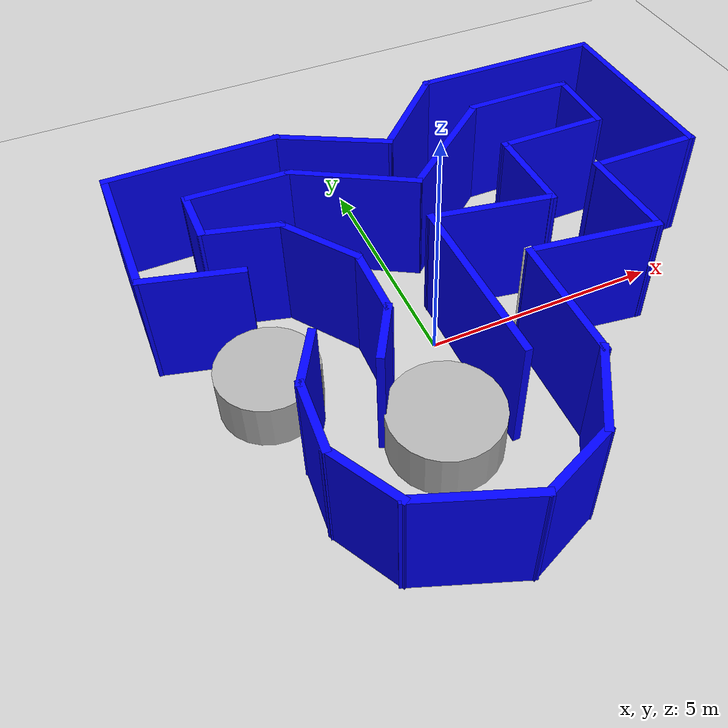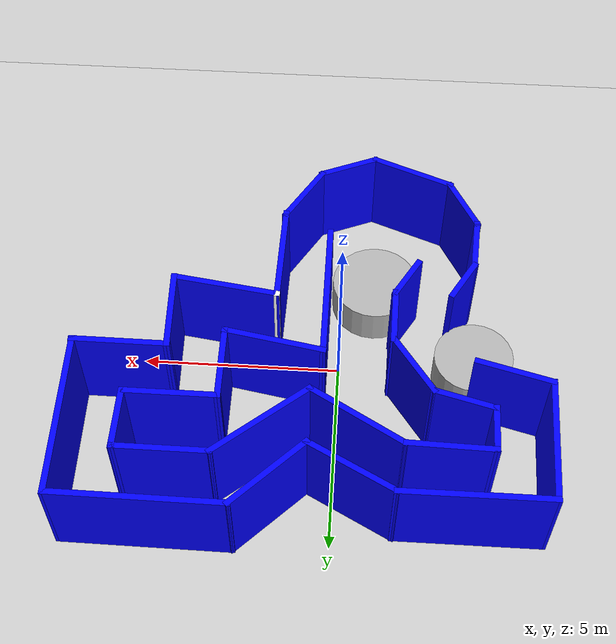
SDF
<?xml version="1.0" ?>
<sdf version="1.8">
  <world name='test_map_2'>
    <physics name='1ms' type='ode'>
      <max_step_size>0.003</max_step_size>
      <real_time_factor>1</real_time_factor>
      <real_time_update_rate>1000</real_time_update_rate>
    </physics>

    <plugin filename="libignition-gazebo-physics-system.so" name="ignition::gazebo::systems::Physics" />
    <plugin filename="libignition-gazebo-user-commands-system.so" name="ignition::gazebo::systems::UserCommands" />
    <plugin filename="libignition-gazebo-scene-broadcaster-system.so" name="ignition::gazebo::systems::SceneBroadcaster" />
    <plugin filename="libignition-gazebo-sensors-system.so" name="ignition::gazebo::systems::Sensors">
      <render_engine>ogre</render_engine>
    </plugin>

    <light type="directional" name="sun">
      <cast_shadows>true</cast_shadows>
      <pose>0 0 10 0 0 0</pose>
      <diffuse>0.8 0.8 0.8 1</diffuse>
      <specular>0.2 0.2 0.2 1</specular>
      <direction>-0.5 0.1 -0.9</direction>
    </light>

    <model name="ground_plane">
      <static>true</static>
      <link name="link">
        <collision name="collision">
          <geometry><plane><normal>0 0 1</normal><size>100 100</size></plane></geometry>
        </collision>
        <visual name="visual">
          <geometry><plane><normal>0 0 1</normal><size>100 100</size></plane></geometry>
          <material>
            <ambient>0.8 0.8 0.8 1</ambient>
            <diffuse>0.8 0.8 0.8 1</diffuse>
          </material>
        </visual>
      </link>
    </model>

    <model name='mappa_2'>
      <static>true</static>
      <pose>0.654951 0.036824 0 0 -0 0</pose>

      <model name='first_cylinder'>
        <pose>-4.05 -0.02 0.5 0 0 0</pose>
        <link name='link'>
          <collision name='collision'>
            <geometry><cylinder><radius>1.0</radius><length>1.0</length></cylinder></geometry>
          </collision>
          <visual name='visual'>
            <geometry><cylinder><radius>1.0</radius><length>1.0</length></cylinder></geometry>
            <material><ambient>0.5 0.5 0.5 1</ambient><diffuse>0.7 0.7 0.7 1</diffuse></material>
          </visual>
        </link>
      </model>

      <model name='second_cylinder'>
        <pose>-1.5 -2.22 0.5 0 0 0</pose>
        <link name='link'>
          <collision name='collision'>
            <geometry><cylinder><radius>1.1</radius><length>1.0</length></cylinder></geometry>
          </collision>
          <visual name='visual'>
            <geometry><cylinder><radius>1.1</radius><length>1.0</length></cylinder></geometry>
            <material><ambient>0.5 0.5 0.5 1</ambient><diffuse>0.7 0.7 0.7 1</diffuse></material>
          </visual>
        </link>
      </model>

      <link name='Wall_0'>
        <pose>-3.65705 -1.3213 0 0 -0 -2.0944</pose>
        <collision name='Wall_0_Collision'>
          <pose>0 0 1.25 0 -0 0</pose>
          <geometry><box><size>1.25 0.15 2.5</size></box></geometry>
        </collision>
        <visual name='Wall_0_Visual'>
          <pose>0 0 1.25 0 -0 0</pose>
          <geometry><box><size>1.25 0.15 2.5</size></box></geometry>
          <material><ambient>0 0 1 1</ambient><diffuse>0 0 1 1</diffuse></material>
        </visual>
      </link>

      <link name='Wall_1'>
        <pose>-3.97128 -2.45953 0 0 -0 -1.62999</pose>
        <collision name='Wall_1_Collision'>
          <pose>0 0 1.25 0 -0 0</pose>
          <geometry><box><size>1.47617 0.15 2.5</size></box></geometry>
        </collision>
        <visual name='Wall_1_Visual'>
          <pose>0 0 1.25 0 -0 0</pose>
          <geometry><box><size>1.47617 0.15 2.5</size></box></geometry>
          <material><ambient>0 0 1 1</ambient><diffuse>0 0 1 1</diffuse></material>
        </visual>
      </link>

      <link name='Wall_10'>
        <pose>-4.8606 1.29248 0 0 -0 2.87979</pose>
        <collision name='Wall_10_Collision'>
          <pose>0 0 1.25 0 -0 0</pose>
          <geometry><box><size>2 0.15 2.5</size></box></geometry>
        </collision>
        <visual name='Wall_10_Visual'>
          <pose>0 0 1.25 0 -0 0</pose>
          <geometry><box><size>2 0.15 2.5</size></box></geometry>
          <material><ambient>0 0 1 1</ambient><diffuse>0 0 1 1</diffuse></material>
        </visual>
      </link>

      <link name='Wall_12'>
        <pose>-5.74101 3.06881 0 0 -0 1.55662</pose>
        <collision name='Wall_12_Collision'>
          <pose>0 0 1.25 0 -0 0</pose>
          <geometry><box><size>3.22416 0.15 2.5</size></box></geometry>
        </collision>
        <visual name='Wall_12_Visual'>
          <pose>0 0 1.25 0 -0 0</pose>
          <geometry><box><size>3.22416 0.15 2.5</size></box></geometry>
          <material><ambient>0 0 1 1</ambient><diffuse>0 0 1 1</diffuse></material>
        </visual>
      </link>

      <link name='Wall_13'>
        <pose>-3.92788 4.60574 0 0 -0 0</pose>
        <collision name='Wall_13_Collision'>
          <pose>0 0 1.25 0 -0 0</pose>
          <geometry><box><size>3.73266 0.15 2.5</size></box></geometry>
        </collision>
        <visual name='Wall_13_Visual'>
          <pose>0 0 1.25 0 -0 0</pose>
          <geometry><box><size>3.73266 0.15 2.5</size></box></geometry>
          <material><ambient>0 0 1 1</ambient><diffuse>0 0 1 1</diffuse></material>
        </visual>
      </link>

      <link name='Wall_18'>
        <pose>5.75719 3.04244 0 0 -0 -1.5708</pose>
        <collision name='Wall_18_Collision'>
          <pose>0 0 1.25 0 -0 0</pose>
          <geometry><box><size>4.25 0.15 2.5</size></box></geometry>
        </collision>
        <visual name='Wall_18_Visual'>
          <pose>0 0 1.25 0 -0 0</pose>
          <geometry><box><size>4.25 0.15 2.5</size></box></geometry>
          <material><ambient>0 0 1 1</ambient><diffuse>0 0 1 1</diffuse></material>
        </visual>
      </link>

      <link name='Wall_19'>
        <pose>4.61512 1.00004 0 0 -0 3.13502</pose>
        <collision name='Wall_19_Collision'>
          <pose>0 0 1.25 0 -0 0</pose>
          <geometry><box><size>2.46071 0.15 2.5</size></box></geometry>
        </collision>
        <visual name='Wall_19_Visual'>
          <pose>0 0 1.25 0 -0 0</pose>
          <geometry><box><size>2.46071 0.15 2.5</size></box></geometry>
          <material><ambient>0 0 1 1</ambient><diffuse>0 0 1 1</diffuse></material>
        </visual>
      </link>

      <link name='Wall_22'>
        <pose>0.452836 -3.85548 0 0 -0 1.02847</pose>
        <collision name='Wall_22_Collision'>
          <pose>0 0 1.25 0 -0 0</pose>
          <geometry><box><size>1.79371 0.15 2.5</size></box></geometry>
        </collision>
        <visual name='Wall_22_Visual'>
          <pose>0 0 1.25 0 -0 0</pose>
          <geometry><box><size>1.79371 0.15 2.5</size></box></geometry>
          <material><ambient>0 0 1 1</ambient><diffuse>0 0 1 1</diffuse></material>
        </visual>
      </link>

      <link name='Wall_25'>
        <pose>0.935722 -0.621074 0 0 -0 0</pose>
        <collision name='Wall_25_Collision'>
          <pose>0 0 1.25 0 -0 0</pose>
          <geometry><box><size>0.15 0.15 2.5</size></box></geometry>
        </collision>
        <visual name='Wall_25_Visual'>
          <pose>0 0 1.25 0 -0 0</pose>
          <geometry><box><size>0.15 0.15 2.5</size></box></geometry>
          <material><ambient>1 1 1 1</ambient><diffuse>1 1 1 1</diffuse></material>
        </visual>
      </link>

      <link name='Wall_30'>
        <pose>0.906371 -1.91274 0 0 -0 -1.59399</pose>
        <collision name='Wall_30_Collision'>
          <pose>0 0 1.25 0 -0 0</pose>
          <geometry><box><size>2.68116 0.15 2.5</size></box></geometry>
        </collision>
        <visual name='Wall_30_Visual'>
          <pose>0 0 1.25 0 -0 0</pose>
          <geometry><box><size>2.68116 0.15 2.5</size></box></geometry>
          <material><ambient>0 0 1 1</ambient><diffuse>0 0 1 1</diffuse></material>
        </visual>
      </link>

      <link name='Wall_32'>
        <pose>2.22362 -0.810262 0 0 -0 2.99574</pose>
        <collision name='Wall_32_Collision'>
          <pose>0 0 1.25 0 -0 0</pose>
          <geometry><box><size>2.75343 0.15 2.5</size></box></geometry>
        </collision>
        <visual name='Wall_32_Visual'>
          <pose>0 0 1.25 0 -0 0</pose>
          <geometry><box><size>2.75343 0.15 2.5</size></box></geometry>
          <material><ambient>0 0 1 1</ambient><diffuse>0 0 1 1</diffuse></material>
        </visual>
      </link>

      <link name='Wall_34'>
        <pose>3.49437 0.00409 0 0 -0 1.59656</pose>
        <collision name='Wall_34_Collision'>
          <pose>0 0 1.25 0 -0 0</pose>
          <geometry><box><size>2.15775 0.15 2.5</size></box></geometry>
        </collision>
        <visual name='Wall_34_Visual'>
          <pose>0 0 1.25 0 -0 0</pose>
          <geometry><box><size>2.15775 0.15 2.5</size></box></geometry>
          <material><ambient>0 0 1 1</ambient><diffuse>0 0 1 1</diffuse></material>
        </visual>
      </link>

      <link name='Wall_38'>
        <pose>-2.26066 -1.31701 0 0 -0 1.0472</pose>
        <collision name='Wall_38_Collision'>
          <pose>0 0 1.25 0 -0 0</pose>
          <geometry><box><size>1.25 0.15 2.5</size></box></geometry>
        </collision>
        <visual name='Wall_38_Visual'>
          <pose>0 0 1.25 0 -0 0</pose>
          <geometry><box><size>1.25 0.15 2.5</size></box></geometry>
          <material><ambient>0 0 1 1</ambient><diffuse>0 0 1 1</diffuse></material>
        </visual>
      </link>

      <link name='Wall_39'>
        <pose>-1.97687 -0.143728 0 0 -0 1.55819</pose>
        <collision name='Wall_39_Collision'>
          <pose>0 0 1.25 0 -0 0</pose>
          <geometry><box><size>1.54405 0.15 2.5</size></box></geometry>
        </collision>
        <visual name='Wall_39_Visual'>
          <pose>0 0 1.25 0 -0 0</pose>
          <geometry><box><size>1.54405 0.15 2.5</size></box></geometry>
          <material><ambient>0 0 1 1</ambient><diffuse>0 0 1 1</diffuse></material>
        </visual>
      </link>

      <link name='Wall_41'>
        <pose>-2.46311 1.2405 0 0 -0 -0.961032</pose>
        <collision name='Wall_41_Collision'>
          <pose>0 0 1.25 0 -0 0</pose>
          <geometry><box><size>1.84812 0.15 2.5</size></box></geometry>
        </collision>
        <visual name='Wall_41_Visual'>
          <pose>0 0 1.25 0 -0 0</pose>
          <geometry><box><size>1.84812 0.15 2.5</size></box></geometry>
          <material><ambient>0 0 1 1</ambient><diffuse>0 0 1 1</diffuse></material>
        </visual>
      </link>

      <link name='Wall_43'>
        <pose>-3.67002 2.1299 0 0 -0 -0.26212</pose>
        <collision name='Wall_43_Collision'>
          <pose>0 0 1.25 0 -0 0</pose>
          <geometry><box><size>1.64234 0.15 2.5</size></box></geometry>
        </collision>
        <visual name='Wall_43_Visual'>
          <pose>0 0 1.25 0 -0 0</pose>
          <geometry><box><size>1.64234 0.15 2.5</size></box></geometry>
          <material><ambient>0 0 1 1</ambient><diffuse>0 0 1 1</diffuse></material>
        </visual>
      </link>

      <link name='Wall_45'>
        <pose>-4.3907 2.87325 0 0 -0 1.5708</pose>
        <collision name='Wall_45_Collision'>
          <pose>0 0 1.25 0 -0 0</pose>
          <geometry><box><size>1.25 0.15 2.5</size></box></geometry>
        </collision>
        <visual name='Wall_45_Visual'>
          <pose>0 0 1.25 0 -0 0</pose>
          <geometry><box><size>1.25 0.15 2.5</size></box></geometry>
          <material><ambient>0 0 1 1</ambient><diffuse>0 0 1 1</diffuse></material>
        </visual>
      </link>

      <link name='Wall_46'>
        <pose>-3.35389 3.39689 0 0 -0 -0.025425</pose>
        <collision name='Wall_46_Collision'>
          <pose>0 0 1.25 0 -0 0</pose>
          <geometry><box><size>2.2243 0.15 2.5</size></box></geometry>
        </collision>
        <visual name='Wall_46_Visual'>
          <pose>0 0 1.25 0 -0 0</pose>
          <geometry><box><size>2.2243 0.15 2.5</size></box></geometry>
          <material><ambient>0 0 1 1</ambient><diffuse>0 0 1 1</diffuse></material>
        </visual>
      </link>

      <link name='Wall_47'>
        <pose>-1.16927 2.71173 0 0 -0 -0.533522</pose>
        <collision name='Wall_47_Collision'>
          <pose>0 0 1.25 0 -0 0</pose>
          <geometry><box><size>2.77532 0.15 2.5</size></box></geometry>
        </collision>
        <visual name='Wall_47_Visual'>
          <pose>0 0 1.25 0 -0 0</pose>
          <geometry><box><size>2.77532 0.15 2.5</size></box></geometry>
          <material><ambient>0 0 1 1</ambient><diffuse>0 0 1 1</diffuse></material>
        </visual>
      </link>

      <link name='Wall_49'>
        <pose>-0.28634 -0.839008 0 0 -0 -1.5708</pose>
        <collision name='Wall_49_Collision'>
          <pose>0 0 1.25 0 -0 0</pose>
          <geometry><box><size>3.75 0.15 2.5</size></box></geometry>
        </collision>
        <visual name='Wall_49_Visual'>
          <pose>0 0 1.25 0 -0 0</pose>
          <geometry><box><size>3.75 0.15 2.5</size></box></geometry>
          <material><ambient>0 0 1 1</ambient><diffuse>0 0 1 1</diffuse></material>
        </visual>
      </link>

      <link name='Wall_5'>
        <pose>-3.66429 -3.75833 0 0 -0 -1.06706</pose>
        <collision name='Wall_5_Collision'>
          <pose>0 0 1.25 0 -0 0</pose>
          <geometry><box><size>1.58449 0.15 2.5</size></box></geometry>
        </collision>
        <visual name='Wall_5_Visual'>
          <pose>0 0 1.25 0 -0 0</pose>
          <geometry><box><size>1.58449 0.15 2.5</size></box></geometry>
          <material><ambient>0 0 1 1</ambient><diffuse>0 0 1 1</diffuse></material>
        </visual>
      </link>

      <link name='Wall_51'>
        <pose>0.91333 0.741272 0 0 -0 2.96045</pose>
        <collision name='Wall_51_Collision'>
          <pose>0 0 1.25 0 -0 0</pose>
          <geometry><box><size>2.58925 0.15 2.5</size></box></geometry>
        </collision>
        <visual name='Wall_51_Visual'>
          <pose>0 0 1.25 0 -0 0</pose>
          <geometry><box><size>2.58925 0.15 2.5</size></box></geometry>
          <material><ambient>0 0 1 1</ambient><diffuse>0 0 1 1</diffuse></material>
        </visual>
      </link>

      <link name='Wall_53'>
        <pose>1.06335 2.95272 0 0 -0 -2.44916</pose>
        <collision name='Wall_53_Collision'>
          <pose>0 0 1.25 0 -0 0</pose>
          <geometry><box><size>2.9688 0.15 2.5</size></box></geometry>
        </collision>
        <visual name='Wall_53_Visual'>
          <pose>0 0 1.25 0 -0 0</pose>
          <geometry><box><size>2.9688 0.15 2.5</size></box></geometry>
          <material><ambient>0 0 1 1</ambient><diffuse>0 0 1 1</diffuse></material>
        </visual>
      </link>

      <link name='Wall_55'>
        <pose>2.113 1.44655 0 0 -0 1.5708</pose>
        <collision name='Wall_55_Collision'>
          <pose>0 0 1.25 0 -0 0</pose>
          <geometry><box><size>2 0.15 2.5</size></box></geometry>
        </collision>
        <visual name='Wall_55_Visual'>
          <pose>0 0 1.25 0 -0 0</pose>
          <geometry><box><size>2 0.15 2.5</size></box></geometry>
          <material><ambient>0 0 1 1</ambient><diffuse>0 0 1 1</diffuse></material>
        </visual>
      </link>

      <link name='Wall_56'>
        <pose>3.23087 2.36716 0 0 -0 -0.003931</pose>
        <collision name='Wall_56_Collision'>
          <pose>0 0 1.25 0 -0 0</pose>
          <geometry><box><size>2.38576 0.15 2.5</size></box></geometry>
        </collision>
        <visual name='Wall_56_Visual'>
          <pose>0 0 1.25 0 -0 0</pose>
          <geometry><box><size>2.38576 0.15 2.5</size></box></geometry>
          <material><ambient>0 0 1 1</ambient><diffuse>0 0 1 1</diffuse></material>
        </visual>
      </link>

      <link name='Wall_58'>
        <pose>3.26603 3.84811 0 0 -0 -0.003931</pose>
        <collision name='Wall_58_Collision'>
          <pose>0 0 1.25 0 -0 0</pose>
          <geometry><box><size>2.38576 0.15 2.5</size></box></geometry>
        </collision>
        <visual name='Wall_58_Visual'>
          <pose>0 0 1.25 0 -0 0</pose>
          <geometry><box><size>2.38576 0.15 2.5</size></box></geometry>
          <material><ambient>0 0 1 1</ambient><diffuse>0 0 1 1</diffuse></material>
        </visual>
      </link>

      <link name='Wall_59'>
        <pose>4.3839 3.10324 0 0 -0 -1.59453</pose>
        <collision name='Wall_59_Collision'>
          <pose>0 0 1.25 0 -0 0</pose>
          <geometry><box><size>1.63137 0.15 2.5</size></box></geometry>
        </collision>
        <visual name='Wall_59_Visual'>
          <pose>0 0 1.25 0 -0 0</pose>
          <geometry><box><size>1.63137 0.15 2.5</size></box></geometry>
          <material><ambient>0 0 1 1</ambient><diffuse>0 0 1 1</diffuse></material>
        </visual>
      </link>

      <link name='Wall_6'>
        <pose>-2.34465 -4.76466 0 0 -0 -0.367553</pose>
        <collision name='Wall_6_Collision'>
          <pose>0 0 1.25 0 -0 0</pose>
          <geometry><box><size>2.25485 0.15 2.5</size></box></geometry>
        </collision>
        <visual name='Wall_6_Visual'>
          <pose>0 0 1.25 0 -0 0</pose>
          <geometry><box><size>2.25485 0.15 2.5</size></box></geometry>
          <material><ambient>0 0 1 1</ambient><diffuse>0 0 1 1</diffuse></material>
        </visual>
      </link>

      <link name='Wall_61'>
        <pose>0.789879 4.30405 0 0 -0 -2.35619</pose>
        <collision name='Wall_61_Collision'>
          <pose>0 0 1.25 0 -0 0</pose>
          <geometry><box><size>2.5 0.15 2.5</size></box></geometry>
        </collision>
        <visual name='Wall_61_Visual'>
          <pose>0 0 1.25 0 -0 0</pose>
          <geometry><box><size>2.5 0.15 2.5</size></box></geometry>
          <material><ambient>0 0 1 1</ambient><diffuse>0 0 1 1</diffuse></material>
        </visual>
      </link>

      <link name='Wall_63'>
        <pose>-1.08876 4.03947 0 0 -0 2.64612</pose>
        <collision name='Wall_63_Collision'>
          <pose>0 0 1.25 0 -0 0</pose>
          <geometry><box><size>2.53204 0.15 2.5</size></box></geometry>
        </collision>
        <visual name='Wall_63_Visual'>
          <pose>0 0 1.25 0 -0 0</pose>
          <geometry><box><size>2.53204 0.15 2.5</size></box></geometry>
          <material><ambient>0 0 1 1</ambient><diffuse>0 0 1 1</diffuse></material>
        </visual>
      </link>

      <link name='Wall_66'>
        <pose>3.68896 5.11367 0 0 -0 3.13133</pose>
        <collision name='Wall_66_Collision'>
          <pose>0 0 1.25 0 -0 0</pose>
          <geometry><box><size>4.28668 0.15 2.5</size></box></geometry>
        </collision>
        <visual name='Wall_66_Visual'>
          <pose>0 0 1.25 0 -0 0</pose>
          <geometry><box><size>4.28668 0.15 2.5</size></box></geometry>
          <material><ambient>0 0 1 1</ambient><diffuse>0 0 1 1</diffuse></material>
        </visual>
      </link>

      <link name='Wall_7'>
        <pose>-0.666933 -4.85547 0 0 -0 0.396226</pose>
        <collision name='Wall_7_Collision'>
          <pose>0 0 1.25 0 -0 0</pose>
          <geometry><box><size>1.63911 0.15 2.5</size></box></geometry>
        </collision>
        <visual name='Wall_7_Visual'>
          <pose>0 0 1.25 0 -0 0</pose>
          <geometry><box><size>1.63911 0.15 2.5</size></box></geometry>
          <material><ambient>0 0 1 1</ambient><diffuse>0 0 1 1</diffuse></material>
        </visual>
      </link>

    </model>
    <model name='goal_flag'>
      <static>true</static>
      <pose>5.00 4.50 0.05 0 0 0</pose>
      <link name='link'>

        <visual name='pole_visual'>
          <pose>0 0 0.5 0 0 0</pose>
          <geometry><cylinder><radius>0.02</radius><length>1.0</length></cylinder></geometry>
          <material><ambient>0.5 0.5 0.5 1</ambient><diffuse>0.5 0.5 0.5 1</diffuse></material>
        </visual>

        <visual name='flag_visual'>
          <pose>0.15 0 0.9 0 0 0</pose>
          <geometry><box><size>0.3 0.02 0.2</size></box></geometry>
          <material><ambient>0 1 0 1</ambient><diffuse>0 1 0 1</diffuse></material>
        </visual>

      </link>
    </model>
  </world>
</sdf>
